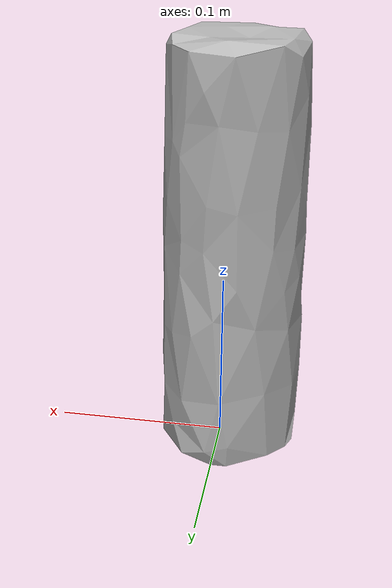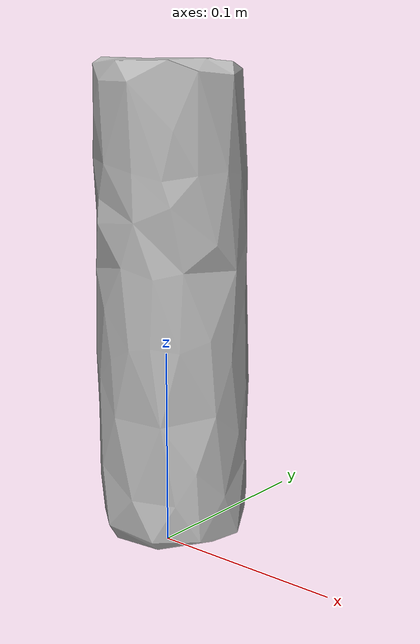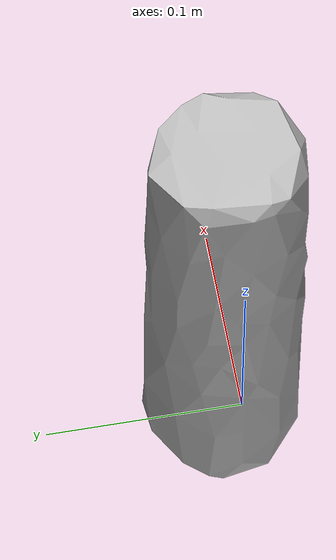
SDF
<?xml version='1.0'?>
<sdf version="1.4">
  <model name="001_chips_can">
    <static>false</static>
    <link name="link">
      <inertial>
        <pose>-0.006010363582866226 0.01109300715813437 0.12268942264395777 -0.004879069443966985 -0.004687498538872648 1.8435478614393541</pose>
        <mass>0.11071566195106183</mass>
        <inertia>
          <ixx>0.0005696736268224547</ixx>
          <ixy>1.1571926681488907e-20</ixy>
          <ixz>5.533439102652466e-20</ixz>
          <iyy>0.0005670104125499717</iyy>
          <iyz>5.650337880729394e-20</iyz>
          <izz>8.045890893758303e-05</izz>
        </inertia>
      </inertial>
      <collision name="collision">
        <geometry>
          <mesh>
            <!-- Use a downsampled mesh for collisions -->
            <uri>model:///001_chips_can/001_chips_can_250_collision.stl</uri>
	        </mesh>
        </geometry>
        <surface>
      </surface>
      </collision>
      <visual name="visual">
        <geometry>
          <mesh>
            <uri>model:///001_chips_can/textured.obj</uri>
	        </mesh>
        </geometry>
        <material>
          <script>
            <uri>model:///001_chips_can/001_chips_can.material</uri>
            <name>001_chips_can</name>
          </script>
        </material>
      </visual>
    </link>
  </model>
</sdf>
